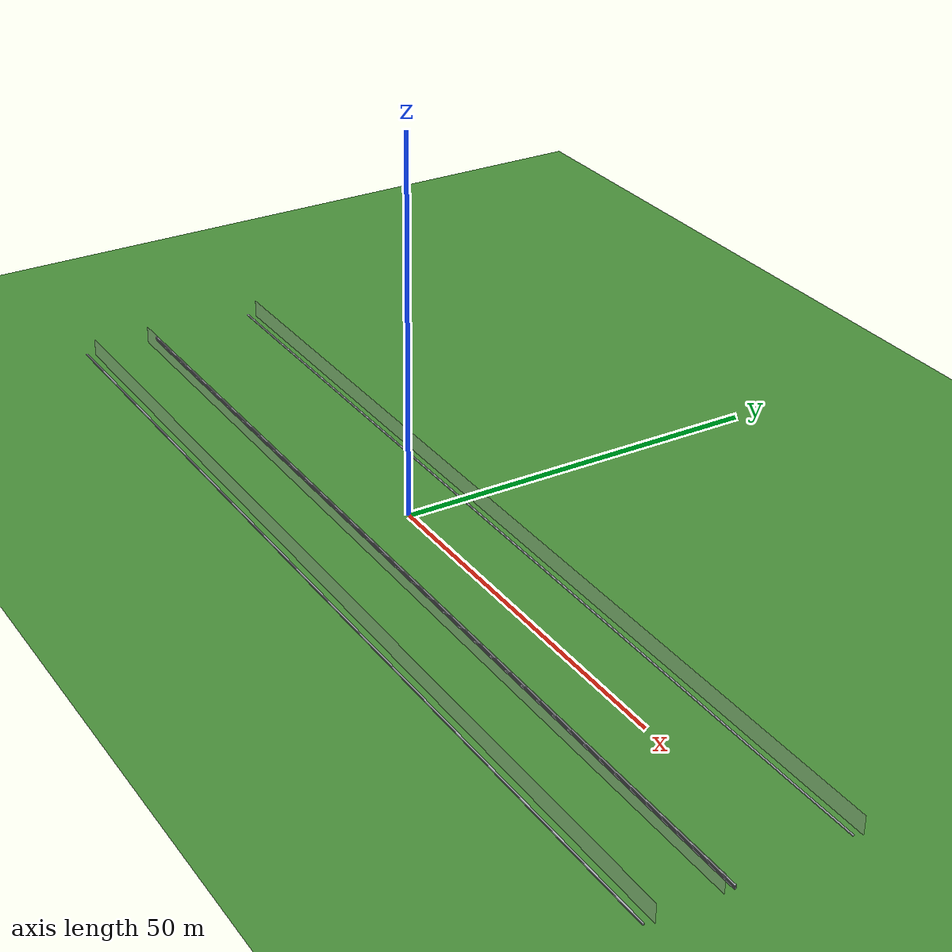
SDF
<sdf version="1.6">
 <world name="sem_silesia_ring_2026">
  <model name="ground_plane">
   <static>true</static>
   <link name="link">
    <collision name="collision">
     <geometry><plane><normal>0 0 1</normal><size>600 600</size></plane></geometry>
     <surface><friction><ode><mu>0.6</mu><mu2>0.6</mu2></ode></friction></surface>
    </collision>
    <visual name="visual">
     <geometry><plane><normal>0 0 1</normal><size>600 600</size></plane></geometry>
     <material><ambient>0.28 0.55 0.22 1</ambient><diffuse>0.28 0.55 0.22 1</diffuse></material>
    </visual>
   </link>
  </model>
  <model name="cd_s1_4">
   <static>true</static>
   <pose>8.0000 0.0000 0.0050 0 0 0.0000</pose>
   <link name="link">
    <visual name="v">
     <geometry><box><size>4.0000 0.1500 0.0080</size></box></geometry>
     <material><ambient>1 1 1 1</ambient><diffuse>1 1 1 1</diffuse></material>
    </visual>
    <collision name="c">
     <geometry><box><size>4.0000 0.1500 0.0080</size></box></geometry>
     <surface><friction><ode><mu>0.9</mu><mu2>0.9</mu2></ode></friction></surface>
    </collision>
   </link>
  </model>
  <model name="arm_s1_n_rib3">
   <static>true</static>
   <pose>7.5000 7.2000 0.4750 0 0 0.0000</pose>
   <link name="link">
    <visual name="v">
     <geometry><box><size>135.0000 0.2200 0.0800</size></box></geometry>
     <material><ambient>0.70 0.72 0.74 1</ambient><diffuse>0.70 0.72 0.74 1</diffuse></material>
    </visual>
    <collision name="c">
     <geometry><box><size>135.0000 0.2200 0.0800</size></box></geometry>
     <surface><friction><ode><mu>0.9</mu><mu2>0.9</mu2></ode></friction></surface>
    </collision>
   </link>
  </model>
  <model name="arm_s1_s_main">
   <static>true</static>
   <pose>7.5000 -7.2000 0.2250 0 0 0.0000</pose>
   <link name="link">
    <visual name="v">
     <geometry><box><size>135.0000 0.2000 0.4500</size></box></geometry>
     <material><ambient>0.70 0.72 0.74 1</ambient><diffuse>0.70 0.72 0.74 1</diffuse></material>
    </visual>
    <collision name="c">
     <geometry><box><size>135.0000 0.2000 0.4500</size></box></geometry>
     <surface><friction><ode><mu>0.9</mu><mu2>0.9</mu2></ode></friction></surface>
    </collision>
   </link>
  </model>
  <model name="arm_s1_s_rib1">
   <static>true</static>
   <pose>7.5000 -7.2000 0.2750 0 0 0.0000</pose>
   <link name="link">
    <visual name="v">
     <geometry><box><size>135.0000 0.2200 0.0800</size></box></geometry>
     <material><ambient>0.70 0.72 0.74 1</ambient><diffuse>0.70 0.72 0.74 1</diffuse></material>
    </visual>
    <collision name="c">
     <geometry><box><size>135.0000 0.2200 0.0800</size></box></geometry>
     <surface><friction><ode><mu>0.9</mu><mu2>0.9</mu2></ode></friction></surface>
    </collision>
   </link>
  </model>
  <model name="arm_s1_s_rib2">
   <static>true</static>
   <pose>7.5000 -7.2000 0.3750 0 0 0.0000</pose>
   <link name="link">
    <visual name="v">
     <geometry><box><size>135.0000 0.2200 0.0800</size></box></geometry>
     <material><ambient>0.70 0.72 0.74 1</ambient><diffuse>0.70 0.72 0.74 1</diffuse></material>
    </visual>
    <collision name="c">
     <geometry><box><size>135.0000 0.2200 0.0800</size></box></geometry>
     <surface><friction><ode><mu>0.9</mu><mu2>0.9</mu2></ode></friction></surface>
    </collision>
   </link>
  </model>
  <model name="arm_s1_s_rib3">
   <static>true</static>
   <pose>7.5000 -7.2000 0.4750 0 0 0.0000</pose>
   <link name="link">
    <visual name="v">
     <geometry><box><size>135.0000 0.2200 0.0800</size></box></geometry>
     <material><ambient>0.70 0.72 0.74 1</ambient><diffuse>0.70 0.72 0.74 1</diffuse></material>
    </visual>
    <collision name="c">
     <geometry><box><size>135.0000 0.2200 0.0800</size></box></geometry>
     <surface><friction><ode><mu>0.9</mu><mu2>0.9</mu2></ode></friction></surface>
    </collision>
   </link>
  </model>
  <model name="arm_s2_n_rib2">
   <static>true</static>
   <pose>7.5000 -17.8000 0.3750 0 0 0.0000</pose>
   <link name="link">
    <visual name="v">
     <geometry><box><size>135.0000 0.2200 0.0800</size></box></geometry>
     <material><ambient>0.70 0.72 0.74 1</ambient><diffuse>0.70 0.72 0.74 1</diffuse></material>
    </visual>
    <collision name="c">
     <geometry><box><size>135.0000 0.2200 0.0800</size></box></geometry>
     <surface><friction><ode><mu>0.9</mu><mu2>0.9</mu2></ode></friction></surface>
    </collision>
   </link>
  </model>
  <model name="arm_s2_n_rib3">
   <static>true</static>
   <pose>7.5000 -17.8000 0.4750 0 0 0.0000</pose>
   <link name="link">
    <visual name="v">
     <geometry><box><size>135.0000 0.2200 0.0800</size></box></geometry>
     <material><ambient>0.70 0.72 0.74 1</ambient><diffuse>0.70 0.72 0.74 1</diffuse></material>
    </visual>
    <collision name="c">
     <geometry><box><size>135.0000 0.2200 0.0800</size></box></geometry>
     <surface><friction><ode><mu>0.9</mu><mu2>0.9</mu2></ode></friction></surface>
    </collision>
   </link>
  </model>
  <model name="fence_s1_n">
   <static>true</static>
   <pose>7.5000 8.5000 1.2000 0 0 0.0000</pose>
   <link name="link">
    <visual name="v">
     <geometry><box><size>135.0000 0.0500 2.4000</size></box></geometry>
     <material><ambient>0.78 0.78 0.78 0.4</ambient><diffuse>0.78 0.78 0.78 0.4</diffuse></material>
    </visual>
    <collision name="c">
     <geometry><box><size>135.0000 0.0500 2.4000</size></box></geometry>
     <surface><friction><ode><mu>0.9</mu><mu2>0.9</mu2></ode></friction></surface>
    </collision>
   </link>
  </model>
  <model name="fence_s1_s">
   <static>true</static>
   <pose>7.5000 -8.5000 1.2000 0 0 0.0000</pose>
   <link name="link">
    <visual name="v">
     <geometry><box><size>135.0000 0.0500 2.4000</size></box></geometry>
     <material><ambient>0.78 0.78 0.78 0.4</ambient><diffuse>0.78 0.78 0.78 0.4</diffuse></material>
    </visual>
    <collision name="c">
     <geometry><box><size>135.0000 0.0500 2.4000</size></box></geometry>
     <surface><friction><ode><mu>0.9</mu><mu2>0.9</mu2></ode></friction></surface>
    </collision>
   </link>
  </model>
  <model name="fence_s2_n">
   <static>true</static>
   <pose>7.5000 -16.5000 1.2000 0 0 0.0000</pose>
   <link name="link">
    <visual name="v">
     <geometry><box><size>135.0000 0.0500 2.4000</size></box></geometry>
     <material><ambient>0.78 0.78 0.78 0.4</ambient><diffuse>0.78 0.78 0.78 0.4</diffuse></material>
    </visual>
    <collision name="c">
     <geometry><box><size>135.0000 0.0500 2.4000</size></box></geometry>
     <surface><friction><ode><mu>0.9</mu><mu2>0.9</mu2></ode></friction></surface>
    </collision>
   </link>
  </model>
 </world>
</sdf>
